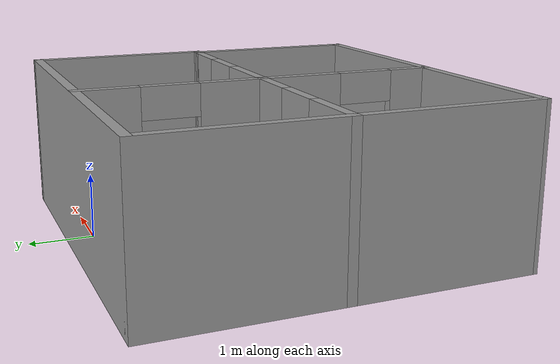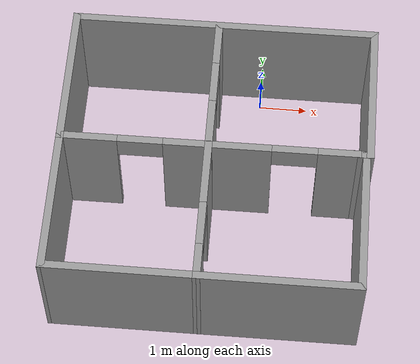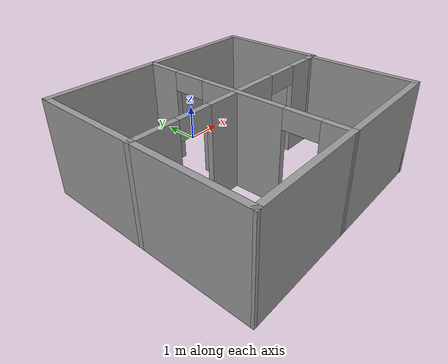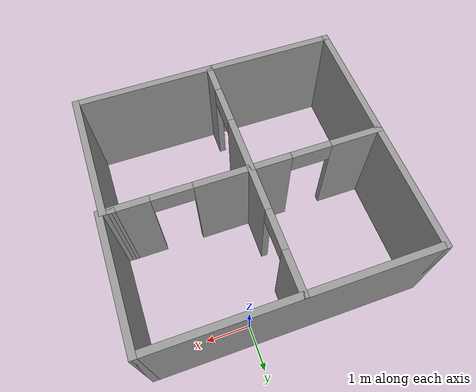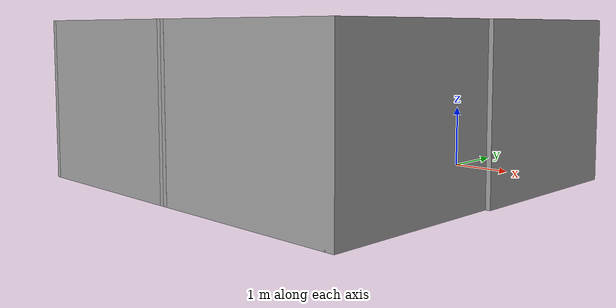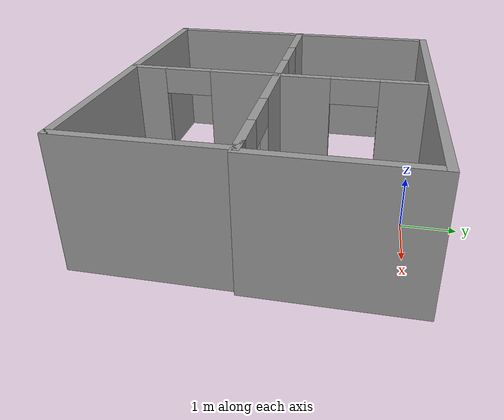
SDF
<?xml version='1.0'?>
<sdf version='1.7'>
  <model name='World_Nav'>
    <pose>-0.790089 -2.50358 0 0 -0 0</pose>
    <link name='Wall_0'>
      <pose>-0.124911 0.003582 0 0 -0 0</pose>
      <visual name='Wall_0_Visual_0'>
        <pose>-2.39688 0 1.25 0 -0 0</pose>
        <geometry>
          <box>
            <size>1.20624 0.15 2.5</size>
          </box>
        </geometry>
        <material>
          <script>
            <uri>file://media/materials/scripts/gazebo.material</uri>
            <name>Gazebo/Grey</name>
          </script>
          <ambient>1 1 1 1</ambient>
        </material>
        <meta>
          <layer>0</layer>
        </meta>
      </visual>
      <collision name='Wall_0_Collision_0'>
        <geometry>
          <box>
            <size>1.20624 0.15 2.5</size>
          </box>
        </geometry>
        <pose>-2.39688 0 1.25 0 -0 0</pose>
      </collision>
      <visual name='Wall_0_Visual_1'>
        <pose>0.177114 0 1.25 0 -0 0</pose>
        <geometry>
          <box>
            <size>2.14175 0.15 2.5</size>
          </box>
        </geometry>
        <material>
          <script>
            <uri>file://media/materials/scripts/gazebo.material</uri>
            <name>Gazebo/Grey</name>
          </script>
          <ambient>1 1 1 1</ambient>
        </material>
        <meta>
          <layer>0</layer>
        </meta>
      </visual>
      <collision name='Wall_0_Collision_1'>
        <geometry>
          <box>
            <size>2.14175 0.15 2.5</size>
          </box>
        </geometry>
        <pose>0.177114 0 1.25 0 -0 0</pose>
      </collision>
      <visual name='Wall_0_Visual_2'>
        <pose>2.57399 0 1.25 0 -0 0</pose>
        <geometry>
          <box>
            <size>0.852011 0.15 2.5</size>
          </box>
        </geometry>
        <material>
          <script>
            <uri>file://media/materials/scripts/gazebo.material</uri>
            <name>Gazebo/Grey</name>
          </script>
          <ambient>1 1 1 1</ambient>
        </material>
        <meta>
          <layer>0</layer>
        </meta>
      </visual>
      <collision name='Wall_0_Collision_2'>
        <geometry>
          <box>
            <size>0.852011 0.15 2.5</size>
          </box>
        </geometry>
        <pose>2.57399 0 1.25 0 -0 0</pose>
      </collision>
      <visual name='Wall_0_Visual_3'>
        <pose>-1.34376 0 2.25 0 -0 0</pose>
        <geometry>
          <box>
            <size>0.9 0.15 0.5</size>
          </box>
        </geometry>
        <material>
          <script>
            <uri>file://media/materials/scripts/gazebo.material</uri>
            <name>Gazebo/Grey</name>
          </script>
          <ambient>1 1 1 1</ambient>
        </material>
        <meta>
          <layer>0</layer>
        </meta>
      </visual>
      <collision name='Wall_0_Collision_3'>
        <geometry>
          <box>
            <size>0.9 0.15 0.5</size>
          </box>
        </geometry>
        <pose>-1.34376 0 2.25 0 -0 0</pose>
      </collision>
      <visual name='Wall_0_Visual_4'>
        <pose>1.69799 0 2.25 0 -0 0</pose>
        <geometry>
          <box>
            <size>0.9 0.15 0.5</size>
          </box>
        </geometry>
        <material>
          <script>
            <uri>file://media/materials/scripts/gazebo.material</uri>
            <name>Gazebo/Grey</name>
          </script>
          <ambient>1 1 1 1</ambient>
        </material>
        <meta>
          <layer>0</layer>
        </meta>
      </visual>
      <collision name='Wall_0_Collision_4'>
        <geometry>
          <box>
            <size>0.9 0.15 0.5</size>
          </box>
        </geometry>
        <pose>1.69799 0 2.25 0 -0 0</pose>
      </collision>
    </link>
    <link name='Wall_11'>
      <pose>-0.121575 1.4216 0 0 -0 1.5708</pose>
      <visual name='Wall_11_Visual_0'>
        <pose>-0.951195 0 1.25 0 -0 0</pose>
        <geometry>
          <box>
            <size>1.09761 0.15 2.5</size>
          </box>
        </geometry>
        <material>
          <script>
            <uri>file://media/materials/scripts/gazebo.material</uri>
            <name>Gazebo/Grey</name>
          </script>
          <ambient>1 1 1 1</ambient>
        </material>
        <meta>
          <layer>0</layer>
        </meta>
      </visual>
      <collision name='Wall_11_Collision_0'>
        <geometry>
          <box>
            <size>1.09761 0.15 2.5</size>
          </box>
        </geometry>
        <pose>-0.951195 0 1.25 0 -0 0</pose>
      </collision>
      <visual name='Wall_11_Visual_1'>
        <pose>0.998805 0 1.25 0 -0 0</pose>
        <geometry>
          <box>
            <size>1.00239 0.15 2.5</size>
          </box>
        </geometry>
        <material>
          <script>
            <uri>file://media/materials/scripts/gazebo.material</uri>
            <name>Gazebo/Grey</name>
          </script>
          <ambient>1 1 1 1</ambient>
        </material>
        <meta>
          <layer>0</layer>
        </meta>
      </visual>
      <collision name='Wall_11_Collision_1'>
        <geometry>
          <box>
            <size>1.00239 0.15 2.5</size>
          </box>
        </geometry>
        <pose>0.998805 0 1.25 0 -0 0</pose>
      </collision>
      <visual name='Wall_11_Visual_2'>
        <pose>0.04761 0 2.25 0 -0 0</pose>
        <geometry>
          <box>
            <size>0.9 0.15 0.5</size>
          </box>
        </geometry>
        <material>
          <script>
            <uri>file://media/materials/scripts/gazebo.material</uri>
            <name>Gazebo/Grey</name>
          </script>
          <ambient>1 1 1 1</ambient>
        </material>
        <meta>
          <layer>0</layer>
        </meta>
      </visual>
      <collision name='Wall_11_Collision_2'>
        <geometry>
          <box>
            <size>0.9 0.15 0.5</size>
          </box>
        </geometry>
        <pose>0.04761 0 2.25 0 -0 0</pose>
      </collision>
    </link>
    <link name='Wall_13'>
      <collision name='Wall_13_Collision'>
        <geometry>
          <box>
            <size>3 0.15 2.5</size>
          </box>
        </geometry>
        <pose>0 0 1.25 0 -0 0</pose>
      </collision>
      <visual name='Wall_13_Visual'>
        <pose>0 0 1.25 0 -0 0</pose>
        <geometry>
          <box>
            <size>3 0.15 2.5</size>
          </box>
        </geometry>
        <material>
          <script>
            <uri>file://media/materials/scripts/gazebo.material</uri>
            <name>Gazebo/Grey</name>
          </script>
          <ambient>1 1 1 1</ambient>
        </material>
        <meta>
          <layer>0</layer>
        </meta>
      </visual>
      <pose>-3.04991 -1.42142 0 0 -0 -1.5708</pose>
    </link>
    <link name='Wall_14'>
      <collision name='Wall_14_Collision'>
        <geometry>
          <box>
            <size>3.07834 0.15 2.5</size>
          </box>
        </geometry>
        <pose>0 0 1.25 0 -0 0</pose>
      </collision>
      <visual name='Wall_14_Visual'>
        <pose>0 0 1.25 0 -0 0</pose>
        <geometry>
          <box>
            <size>3.07834 0.15 2.5</size>
          </box>
        </geometry>
        <material>
          <script>
            <uri>file://media/materials/scripts/gazebo.material</uri>
            <name>Gazebo/Grey</name>
          </script>
          <ambient>1 1 1 1</ambient>
        </material>
        <meta>
          <layer>0</layer>
        </meta>
      </visual>
      <pose>-1.58574 -2.84991 0 0 -0 -0.002386</pose>
    </link>
    <link name='Wall_15'>
      <collision name='Wall_15_Collision'>
        <geometry>
          <box>
            <size>3.25 0.15 2.5</size>
          </box>
        </geometry>
        <pose>0 0 1.25 0 -0 0</pose>
      </collision>
      <visual name='Wall_15_Visual'>
        <pose>0 0 1.25 0 -0 0</pose>
        <geometry>
          <box>
            <size>3.25 0.15 2.5</size>
          </box>
        </geometry>
        <material>
          <script>
            <uri>file://media/materials/scripts/gazebo.material</uri>
            <name>Gazebo/Grey</name>
          </script>
          <ambient>1 1 1 1</ambient>
        </material>
        <meta>
          <layer>0</layer>
        </meta>
      </visual>
      <pose>1.42843 -2.8534 0 0 -0 0</pose>
    </link>
    <link name='Wall_17'>
      <collision name='Wall_17_Collision'>
        <geometry>
          <box>
            <size>3 0.15 2.5</size>
          </box>
        </geometry>
        <pose>0 0 1.25 0 -0 0</pose>
      </collision>
      <visual name='Wall_17_Visual'>
        <pose>0 0 1.25 0 -0 0</pose>
        <geometry>
          <box>
            <size>3 0.15 2.5</size>
          </box>
        </geometry>
        <material>
          <script>
            <uri>file://media/materials/scripts/gazebo.material</uri>
            <name>Gazebo/Grey</name>
          </script>
          <ambient>1 1 1 1</ambient>
        </material>
        <meta>
          <layer>0</layer>
        </meta>
      </visual>
      <pose>2.97843 -1.4284 0 0 -0 1.5708</pose>
    </link>
    <link name='Wall_18'>
      <collision name='Wall_18_Collision'>
        <geometry>
          <box>
            <size>0.328473 0.15 2.5</size>
          </box>
        </geometry>
        <pose>0 0 1.25 0 -0 0</pose>
      </collision>
      <visual name='Wall_18_Visual'>
        <pose>0 0 1.25 0 -0 0</pose>
        <geometry>
          <box>
            <size>0.328473 0.15 2.5</size>
          </box>
        </geometry>
        <material>
          <script>
            <uri>file://media/materials/scripts/gazebo.material</uri>
            <name>Gazebo/Grey</name>
          </script>
          <ambient>1 1 1 1</ambient>
        </material>
        <meta>
          <layer>0</layer>
        </meta>
      </visual>
      <pose>2.88926 8.9e-05 0 0 -0 3.10244</pose>
    </link>
    <link name='Wall_21'>
      <collision name='Wall_21_Collision'>
        <geometry>
          <box>
            <size>3 0.15 2.5</size>
          </box>
        </geometry>
        <pose>0 0 1.25 0 -0 0</pose>
      </collision>
      <visual name='Wall_21_Visual'>
        <pose>0 0 1.25 0 -0 0</pose>
        <geometry>
          <box>
            <size>3 0.15 2.5</size>
          </box>
        </geometry>
        <material>
          <script>
            <uri>file://media/materials/scripts/gazebo.material</uri>
            <name>Gazebo/Grey</name>
          </script>
          <ambient>1 1 1 1</ambient>
        </material>
        <meta>
          <layer>0</layer>
        </meta>
      </visual>
      <pose>-3.04991 1.42858 0 0 -0 1.5708</pose>
    </link>
    <link name='Wall_22'>
      <collision name='Wall_22_Collision'>
        <geometry>
          <box>
            <size>6.25 0.15 2.5</size>
          </box>
        </geometry>
        <pose>0 0 1.25 0 -0 0</pose>
      </collision>
      <visual name='Wall_22_Visual'>
        <pose>0 0 1.25 0 -0 0</pose>
        <geometry>
          <box>
            <size>6.25 0.15 2.5</size>
          </box>
        </geometry>
        <material>
          <script>
            <uri>file://media/materials/scripts/gazebo.material</uri>
            <name>Gazebo/Grey</name>
          </script>
          <ambient>1 1 1 1</ambient>
        </material>
        <meta>
          <layer>0</layer>
        </meta>
      </visual>
      <pose>8.9e-05 2.85358 0 0 -0 0</pose>
    </link>
    <link name='Wall_23'>
      <collision name='Wall_23_Collision'>
        <geometry>
          <box>
            <size>3 0.15 2.5</size>
          </box>
        </geometry>
        <pose>0 0 1.25 0 -0 0</pose>
      </collision>
      <visual name='Wall_23_Visual'>
        <pose>0 0 1.25 0 -0 0</pose>
        <geometry>
          <box>
            <size>3 0.15 2.5</size>
          </box>
        </geometry>
        <material>
          <script>
            <uri>file://media/materials/scripts/gazebo.material</uri>
            <name>Gazebo/Grey</name>
          </script>
          <ambient>1 1 1 1</ambient>
        </material>
        <meta>
          <layer>0</layer>
        </meta>
      </visual>
      <pose>3.05009 1.42858 0 0 -0 -1.5708</pose>
    </link>
    <link name='Wall_7'>
      <pose>-0.121575 -1.4284 0 0 -0 -1.5708</pose>
      <visual name='Wall_7_Visual_0'>
        <pose>-0.819282 0 1.25 0 -0 0</pose>
        <geometry>
          <box>
            <size>1.36144 0.15 2.5</size>
          </box>
        </geometry>
        <material>
          <script>
            <uri>file://media/materials/scripts/gazebo.material</uri>
            <name>Gazebo/Grey</name>
          </script>
          <ambient>1 1 1 1</ambient>
        </material>
        <meta>
          <layer>0</layer>
        </meta>
      </visual>
      <collision name='Wall_7_Collision_0'>
        <geometry>
          <box>
            <size>1.36144 0.15 2.5</size>
          </box>
        </geometry>
        <pose>-0.819282 0 1.25 0 -0 0</pose>
      </collision>
      <visual name='Wall_7_Visual_1'>
        <pose>1.13072 0 1.25 0 -0 0</pose>
        <geometry>
          <box>
            <size>0.738563 0.15 2.5</size>
          </box>
        </geometry>
        <material>
          <script>
            <uri>file://media/materials/scripts/gazebo.material</uri>
            <name>Gazebo/Grey</name>
          </script>
          <ambient>1 1 1 1</ambient>
        </material>
        <meta>
          <layer>0</layer>
        </meta>
      </visual>
      <collision name='Wall_7_Collision_1'>
        <geometry>
          <box>
            <size>0.738563 0.15 2.5</size>
          </box>
        </geometry>
        <pose>1.13072 0 1.25 0 -0 0</pose>
      </collision>
      <visual name='Wall_7_Visual_2'>
        <pose>0.311437 0 2.25 0 -0 0</pose>
        <geometry>
          <box>
            <size>0.9 0.15 0.5</size>
          </box>
        </geometry>
        <material>
          <script>
            <uri>file://media/materials/scripts/gazebo.material</uri>
            <name>Gazebo/Grey</name>
          </script>
          <ambient>1 1 1 1</ambient>
        </material>
        <meta>
          <layer>0</layer>
        </meta>
      </visual>
      <collision name='Wall_7_Collision_2'>
        <geometry>
          <box>
            <size>0.9 0.15 0.5</size>
          </box>
        </geometry>
        <pose>0.311437 0 2.25 0 -0 0</pose>
      </collision>
    </link>
    <static>1</static>
  </model>
</sdf>
